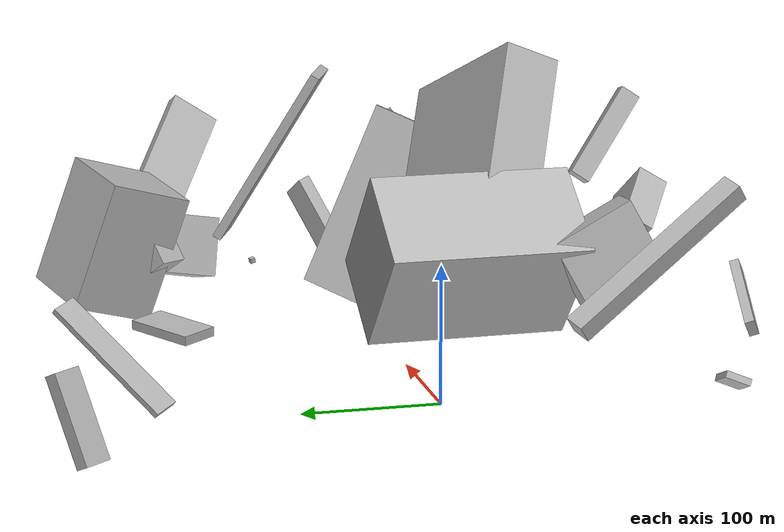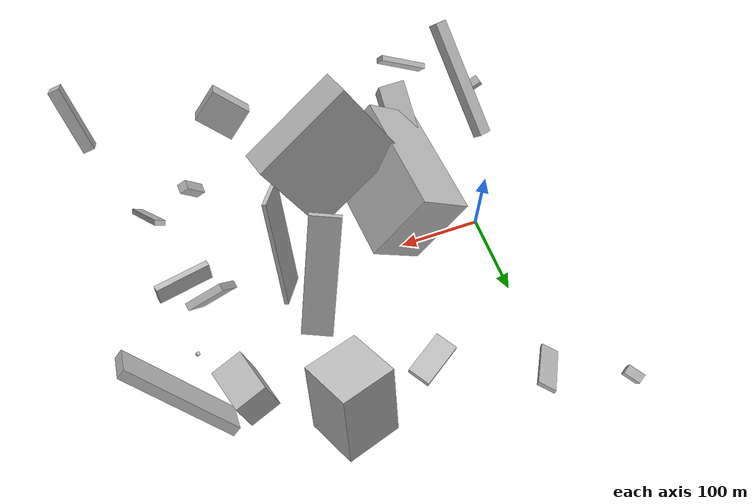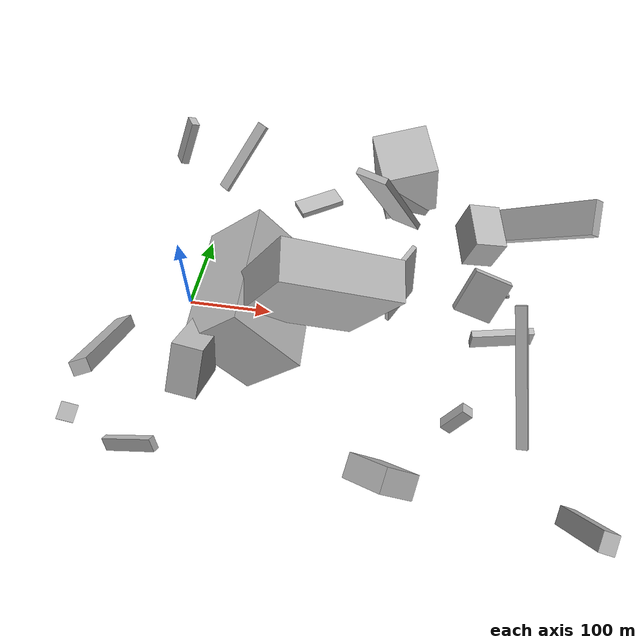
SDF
<sdf version="1.6">
 <world name="default">
  <scene>
   <sky><clouds><speed>12</speed></clouds></sky>
   <ambient>0.4 0.4 0.4 1</ambient>
   <background>0.7 0.7 0.7 1</background>
   <shadows>1</shadows>
  </scene>
  <gravity>0 0 -9.8066</gravity>
  <magnetic_field>6e-06 2.3e-05 -4.2e-05</magnetic_field>
  <physics default="0" name="default_physics" type="ode">
   <ode>
    <solver>
     <type>quick</type>
     <iters>10</iters>
     <sor>1.0</sor>
     <use_dynamic_moi_rescaling>0</use_dynamic_moi_rescaling>
    </solver>
    <constraints>
     <cfm>0</cfm>
     <erp>0.2</erp>
     <contact_max_correcting_vel>100</contact_max_correcting_vel>
     <contact_surface_layer>0.001</contact_surface_layer>
    </constraints>
   </ode>
   <max_step_size>0.004</max_step_size>
   <real_time_factor>1</real_time_factor>
   <real_time_update_rate>250</real_time_update_rate>
  </physics>
  <light name="sun" type="directional">
   <pose>0 0 10 0 0 0</pose>
   <diffuse>0.8 0.8 0.8 1</diffuse>
   <specular>0.2 0.2 0.2 1</specular>
   <attenuation>
    <range>1000</range>
    <constant>0.9</constant>
    <linear>0.01</linear>
    <quadratic>0.001</quadratic>
   </attenuation>
   <direction>-0.5 0.1 -0.9</direction>
  </light>
  <model name="building_1">
   <static>0</static>
   <pose>154.33354120400645 182.24960744742987 30.915709535203398 -1.9264891819942456 -1.5023611702690343 2.5049785838547582</pose>
   <link name="link">
    <gravity>0</gravity>
    <pose>0 0 28.5 0 0 0</pose>
    <collision name="collision"><geometry><box><size>7 28 57</size></box></geometry></collision>
    <visual name="visual">
     <cast_shadows>0</cast_shadows>
     <geometry><box><size>7 28 57</size></box></geometry>
     <material>
      <script>
       <uri>model://HANNAS_wall/materials/scripts</uri>
       <uri>model://HANNAS_wall/materials/textures</uri>
       <name>vrc/HANNAS_wall</name>
      </script>
     </material>
    </visual>
   </link>
  </model>
  <model name="building_2">
   <static>0</static>
   <pose>92.53150535355955 29.31812574921321 80.91977814403754 1.58783651057503 -0.6752707972109274 0.05273212583487879</pose>
   <link name="link">
    <gravity>0</gravity>
    <pose>0 0 75.0 0 0 0</pose>
    <collision name="collision"><geometry><box><size>77 97 150</size></box></geometry></collision>
    <visual name="visual">
     <cast_shadows>0</cast_shadows>
     <geometry><box><size>77 97 150</size></box></geometry>
     <material>
      <script>
       <uri>model://HANNAS_wall/materials/scripts</uri>
       <uri>model://HANNAS_wall/materials/textures</uri>
       <name>vrc/HANNAS_wall</name>
      </script>
     </material>
    </visual>
   </link>
  </model>
  <model name="building_3">
   <static>0</static>
   <pose>337.11230055631296 5.066079310338627 35.45759529052586 0.40909808989963814 -0.42378091029187276 -3.1094763832071988</pose>
   <link name="link">
    <gravity>0</gravity>
    <pose>0 0 26.5 0 0 0</pose>
    <collision name="collision"><geometry><box><size>47 9 53</size></box></geometry></collision>
    <visual name="visual">
     <cast_shadows>0</cast_shadows>
     <geometry><box><size>47 9 53</size></box></geometry>
     <material>
      <script>
       <uri>model://HANNAS_wall/materials/scripts</uri>
       <uri>model://HANNAS_wall/materials/textures</uri>
       <name>vrc/HANNAS_wall</name>
      </script>
     </material>
    </visual>
   </link>
  </model>
  <model name="building_4">
   <static>0</static>
   <pose>265.41164626183433 11.225271527792248 92.51430755645906 2.591285677466797 -1.1631699206246515 -1.5529649007265705</pose>
   <link name="link">
    <gravity>0</gravity>
    <pose>0 0 23.5 0 0 0</pose>
    <collision name="collision"><geometry><box><size>148 5 47</size></box></geometry></collision>
    <visual name="visual">
     <cast_shadows>0</cast_shadows>
     <geometry><box><size>148 5 47</size></box></geometry>
     <material>
      <script>
       <uri>model://HANNAS_wall/materials/scripts</uri>
       <uri>model://HANNAS_wall/materials/textures</uri>
       <name>vrc/HANNAS_wall</name>
      </script>
     </material>
    </visual>
   </link>
  </model>
  <model name="building_5">
   <static>0</static>
   <pose>372.16990636347924 -21.47688992882491 23.770036548704326 0.17482042101318293 -0.022264513323221307 0.19995562522794982</pose>
   <link name="link">
    <gravity>0</gravity>
    <pose>0 0 12.5 0 0 0</pose>
    <collision name="collision"><geometry><box><size>69 8 25</size></box></geometry></collision>
    <visual name="visual">
     <cast_shadows>0</cast_shadows>
     <geometry><box><size>69 8 25</size></box></geometry>
     <material>
      <script>
       <uri>model://HANNAS_wall/materials/scripts</uri>
       <uri>model://HANNAS_wall/materials/textures</uri>
       <name>vrc/HANNAS_wall</name>
      </script>
     </material>
    </visual>
   </link>
  </model>
  <model name="building_6">
   <static>0</static>
   <pose>58.22807239813789 -108.94826251233168 70.96741859964925 -1.0730657260484147 -0.11253403308628178 3.070797315440263</pose>
   <link name="link">
    <gravity>0</gravity>
    <pose>0 0 32.0 0 0 0</pose>
    <collision name="collision"><geometry><box><size>32 55 64</size></box></geometry></collision>
    <visual name="visual">
     <cast_shadows>0</cast_shadows>
     <geometry><box><size>32 55 64</size></box></geometry>
     <material>
      <script>
       <uri>model://HANNAS_wall/materials/scripts</uri>
       <uri>model://HANNAS_wall/materials/textures</uri>
       <name>vrc/HANNAS_wall</name>
      </script>
     </material>
    </visual>
   </link>
  </model>
  <model name="building_7">
   <static>0</static>
   <pose>-80.04159427359532 259.3194375521189 35.471801969471144 1.991822399960283 0.04577303164779193 2.152318793556732</pose>
   <link name="link">
    <gravity>0</gravity>
    <pose>0 0 5.5 0 0 0</pose>
    <collision name="collision"><geometry><box><size>20 64 11</size></box></geometry></collision>
    <visual name="visual">
     <cast_shadows>0</cast_shadows>
     <geometry><box><size>20 64 11</size></box></geometry>
     <material>
      <script>
       <uri>model://HANNAS_wall/materials/scripts</uri>
       <uri>model://HANNAS_wall/materials/textures</uri>
       <name>vrc/HANNAS_wall</name>
      </script>
     </material>
    </visual>
   </link>
  </model>
  <model name="building_8">
   <static>0</static>
   <pose>242.13484751024257 -214.7762751190802 50.27595769498604 0.9148384093914751 -0.534928755928824 1.3669420527678078</pose>
   <link name="link">
    <gravity>0</gravity>
    <pose>0 0 26.5 0 0 0</pose>
    <collision name="collision"><geometry><box><size>25 44 53</size></box></geometry></collision>
    <visual name="visual">
     <cast_shadows>0</cast_shadows>
     <geometry><box><size>25 44 53</size></box></geometry>
     <material>
      <script>
       <uri>model://HANNAS_wall/materials/scripts</uri>
       <uri>model://HANNAS_wall/materials/textures</uri>
       <name>vrc/HANNAS_wall</name>
      </script>
     </material>
    </visual>
   </link>
  </model>
  <model name="building_9">
   <static>0</static>
   <pose>232.30989392660499 -54.07710146783588 114.88626869334718 0.7320566771224761 -0.9725479695809442 -0.497403778901625</pose>
   <link name="link">
    <gravity>0</gravity>
    <pose>0 0 65.5 0 0 0</pose>
    <collision name="collision"><geometry><box><size>119 44 131</size></box></geometry></collision>
    <visual name="visual">
     <cast_shadows>0</cast_shadows>
     <geometry><box><size>119 44 131</size></box></geometry>
     <material>
      <script>
       <uri>model://HANNAS_wall/materials/scripts</uri>
       <uri>model://HANNAS_wall/materials/textures</uri>
       <name>vrc/HANNAS_wall</name>
      </script>
     </material>
    </visual>
   </link>
  </model>
  <model name="building_10">
   <static>0</static>
   <pose>432.81158902600407 -235.89407803331272 54.98326260597649 -0.3524915774949048 0.5823716616495759 -1.8055527917548622</pose>
   <link name="link">
    <gravity>0</gravity>
    <pose>0 0 43.5 0 0 0</pose>
    <collision name="collision"><geometry><box><size>18 15 87</size></box></geometry></collision>
    <visual name="visual">
     <cast_shadows>0</cast_shadows>
     <geometry><box><size>18 15 87</size></box></geometry>
     <material>
      <script>
       <uri>model://HANNAS_wall/materials/scripts</uri>
       <uri>model://HANNAS_wall/materials/textures</uri>
       <name>vrc/HANNAS_wall</name>
      </script>
     </material>
    </visual>
   </link>
  </model>
  <model name="building_11">
   <static>0</static>
   <pose>22.716765343136252 218.10089407043804 47.26038002752017 -1.8030421966791408 -0.7015553367934158 0.9352602040720742</pose>
   <link name="link">
    <gravity>0</gravity>
    <pose>0 0 10.5 0 0 0</pose>
    <collision name="collision"><geometry><box><size>101 4 21</size></box></geometry></collision>
    <visual name="visual">
     <cast_shadows>0</cast_shadows>
     <geometry><box><size>101 4 21</size></box></geometry>
     <material>
      <script>
       <uri>model://HANNAS_wall/materials/scripts</uri>
       <uri>model://HANNAS_wall/materials/textures</uri>
       <name>vrc/HANNAS_wall</name>
      </script>
     </material>
    </visual>
   </link>
  </model>
  <model name="building_12">
   <static>0</static>
   <pose>227.75748396815783 223.94380721444753 81.90691726384705 1.8804193592174652 -0.13670930100882342 0.3182197681301512</pose>
   <link name="link">
    <gravity>0</gravity>
    <pose>0 0 33.0 0 0 0</pose>
    <collision name="collision"><geometry><box><size>68 98 66</size></box></geometry></collision>
    <visual name="visual">
     <cast_shadows>0</cast_shadows>
     <geometry><box><size>68 98 66</size></box></geometry>
     <material>
      <script>
       <uri>model://HANNAS_wall/materials/scripts</uri>
       <uri>model://HANNAS_wall/materials/textures</uri>
       <name>vrc/HANNAS_wall</name>
      </script>
     </material>
    </visual>
   </link>
  </model>
  <model name="building_13">
   <static>0</static>
   <pose>-76.06895308234184 -195.5060642045423 22.884389849070406 -1.1407401971036968 0.4185885062700475 0.09691505724219293</pose>
   <link name="link">
    <gravity>0</gravity>
    <pose>0 0 9.5 0 0 0</pose>
    <collision name="collision"><geometry><box><size>18 5 19</size></box></geometry></collision>
    <visual name="visual">
     <cast_shadows>0</cast_shadows>
     <geometry><box><size>18 5 19</size></box></geometry>
     <material>
      <script>
       <uri>model://HANNAS_wall/materials/scripts</uri>
       <uri>model://HANNAS_wall/materials/textures</uri>
       <name>vrc/HANNAS_wall</name>
      </script>
     </material>
    </visual>
   </link>
  </model>
  <model name="building_14">
   <static>0</static>
   <pose>328.6839377871244 -147.1464807665244 46.14557105101515 1.8620531794859687 0.9241412320338034 -2.8850392727525267</pose>
   <link name="link">
    <gravity>0</gravity>
    <pose>0 0 6.0 0 0 0</pose>
    <collision name="collision"><geometry><box><size>34 13 12</size></box></geometry></collision>
    <visual name="visual">
     <cast_shadows>0</cast_shadows>
     <geometry><box><size>34 13 12</size></box></geometry>
     <material>
      <script>
       <uri>model://HANNAS_wall/materials/scripts</uri>
       <uri>model://HANNAS_wall/materials/textures</uri>
       <name>vrc/HANNAS_wall</name>
      </script>
     </material>
    </visual>
   </link>
  </model>
  <model name="building_15">
   <static>0</static>
   <pose>248.46990233188333 182.01341015391705 54.398104175124644 -2.5230515177543 -0.04319239970617907 2.2351579289973533</pose>
   <link name="link">
    <gravity>0</gravity>
    <pose>0 0 12.0 0 0 0</pose>
    <collision name="collision"><geometry><box><size>23 84 24</size></box></geometry></collision>
    <visual name="visual">
     <cast_shadows>0</cast_shadows>
     <geometry><box><size>23 84 24</size></box></geometry>
     <material>
      <script>
       <uri>model://HANNAS_wall/materials/scripts</uri>
       <uri>model://HANNAS_wall/materials/textures</uri>
       <name>vrc/HANNAS_wall</name>
      </script>
     </material>
    </visual>
   </link>
  </model>
  <model name="building_16">
   <static>0</static>
   <pose>418.8739632435722 129.02003063218626 73.19067023940018 0.7788074508421486 -0.6696292192474828 -0.5974172017683859</pose>
   <link name="link">
    <gravity>0</gravity>
    <pose>0 0 6.0 0 0 0</pose>
    <collision name="collision"><geometry><box><size>150 41 12</size></box></geometry></collision>
    <visual name="visual">
     <cast_shadows>0</cast_shadows>
     <geometry><box><size>150 41 12</size></box></geometry>
     <material>
      <script>
       <uri>model://HANNAS_wall/materials/scripts</uri>
       <uri>model://HANNAS_wall/materials/textures</uri>
       <name>vrc/HANNAS_wall</name>
      </script>
     </material>
    </visual>
   </link>
  </model>
  <model name="building_17">
   <static>0</static>
   <pose>383.91406153904063 -100.90024771654137 71.99144686553312 1.0750041476324832 -0.8504416234672384 1.789638859649662</pose>
   <link name="link">
    <gravity>0</gravity>
    <pose>0 0 6.0 0 0 0</pose>
    <collision name="collision"><geometry><box><size>150 6 12</size></box></geometry></collision>
    <visual name="visual">
     <cast_shadows>0</cast_shadows>
     <geometry><box><size>150 6 12</size></box></geometry>
     <material>
      <script>
       <uri>model://HANNAS_wall/materials/scripts</uri>
       <uri>model://HANNAS_wall/materials/textures</uri>
       <name>vrc/HANNAS_wall</name>
      </script>
     </material>
    </visual>
   </link>
  </model>
  <model name="building_18">
   <static>0</static>
   <pose>323.7035299263507 125.85820447472875 43.49288389788258 1.8120829288403482 -0.20205057487438532 1.8015223444843782</pose>
   <link name="link">
    <gravity>0</gravity>
    <pose>0 0 20.0 0 0 0</pose>
    <collision name="collision"><geometry><box><size>58 47 40</size></box></geometry></collision>
    <visual name="visual">
     <cast_shadows>0</cast_shadows>
     <geometry><box><size>58 47 40</size></box></geometry>
     <material>
      <script>
       <uri>model://HANNAS_wall/materials/scripts</uri>
       <uri>model://HANNAS_wall/materials/textures</uri>
       <name>vrc/HANNAS_wall</name>
      </script>
     </material>
    </visual>
   </link>
  </model>
  <model name="building_19">
   <static>0</static>
   <pose>380.92465750023547 62.18075523386471 11.298383869135277 -1.3288373633598145 0.12563661223515438 -2.8663953180521395</pose>
   <link name="link">
    <gravity>0</gravity>
    <pose>0 0 2.0 0 0 0</pose>
    <collision name="collision"><geometry><box><size>4 4 4</size></box></geometry></collision>
    <visual name="visual">
     <cast_shadows>0</cast_shadows>
     <geometry><box><size>4 4 4</size></box></geometry>
     <material>
      <script>
       <uri>model://HANNAS_wall/materials/scripts</uri>
       <uri>model://HANNAS_wall/materials/textures</uri>
       <name>vrc/HANNAS_wall</name>
      </script>
     </material>
    </visual>
   </link>
  </model>
  <model name="building_20">
   <static>0</static>
   <pose>-39.48272853243185 -85.95223039391487 59.09646296557486 -0.9164605689672582 0.2301829149332771 -2.806492142857631</pose>
   <link name="link">
    <gravity>0</gravity>
    <pose>0 0 75.0 0 0 0</pose>
    <collision name="collision"><geometry><box><size>17 14 150</size></box></geometry></collision>
    <visual name="visual">
     <cast_shadows>0</cast_shadows>
     <geometry><box><size>17 14 150</size></box></geometry>
     <material>
      <script>
       <uri>model://HANNAS_wall/materials/scripts</uri>
       <uri>model://HANNAS_wall/materials/textures</uri>
       <name>vrc/HANNAS_wall</name>
      </script>
     </material>
    </visual>
   </link>
  </model>
  <model name="building_21">
   <static>0</static>
   <pose>249.37494462073585 108.59763262121066 70.38242001574628 -0.5503728760150945 0.03716919418776489 2.7254524350048013</pose>
   <link name="link">
    <gravity>0</gravity>
    <pose>0 0 75.0 0 0 0</pose>
    <collision name="collision"><geometry><box><size>36 7 150</size></box></geometry></collision>
    <visual name="visual">
     <cast_shadows>0</cast_shadows>
     <geometry><box><size>36 7 150</size></box></geometry>
     <material>
      <script>
       <uri>model://HANNAS_wall/materials/scripts</uri>
       <uri>model://HANNAS_wall/materials/textures</uri>
       <name>vrc/HANNAS_wall</name>
      </script>
     </material>
    </visual>
   </link>
  </model>
  <model name="building_22">
   <static>0</static>
   <pose>12.41814137181358 -224.74732624683645 64.46334812707785 2.7537134229337563 -0.4736299200506096 -0.15610190212954467</pose>
   <link name="link">
    <gravity>0</gravity>
    <pose>0 0 7.0 0 0 0</pose>
    <collision name="collision"><geometry><box><size>66 7 14</size></box></geometry></collision>
    <visual name="visual">
     <cast_shadows>0</cast_shadows>
     <geometry><box><size>66 7 14</size></box></geometry>
     <material>
      <script>
       <uri>model://HANNAS_wall/materials/scripts</uri>
       <uri>model://HANNAS_wall/materials/textures</uri>
       <name>vrc/HANNAS_wall</name>
      </script>
     </material>
    </visual>
   </link>
  </model>
 </world>
</sdf>
